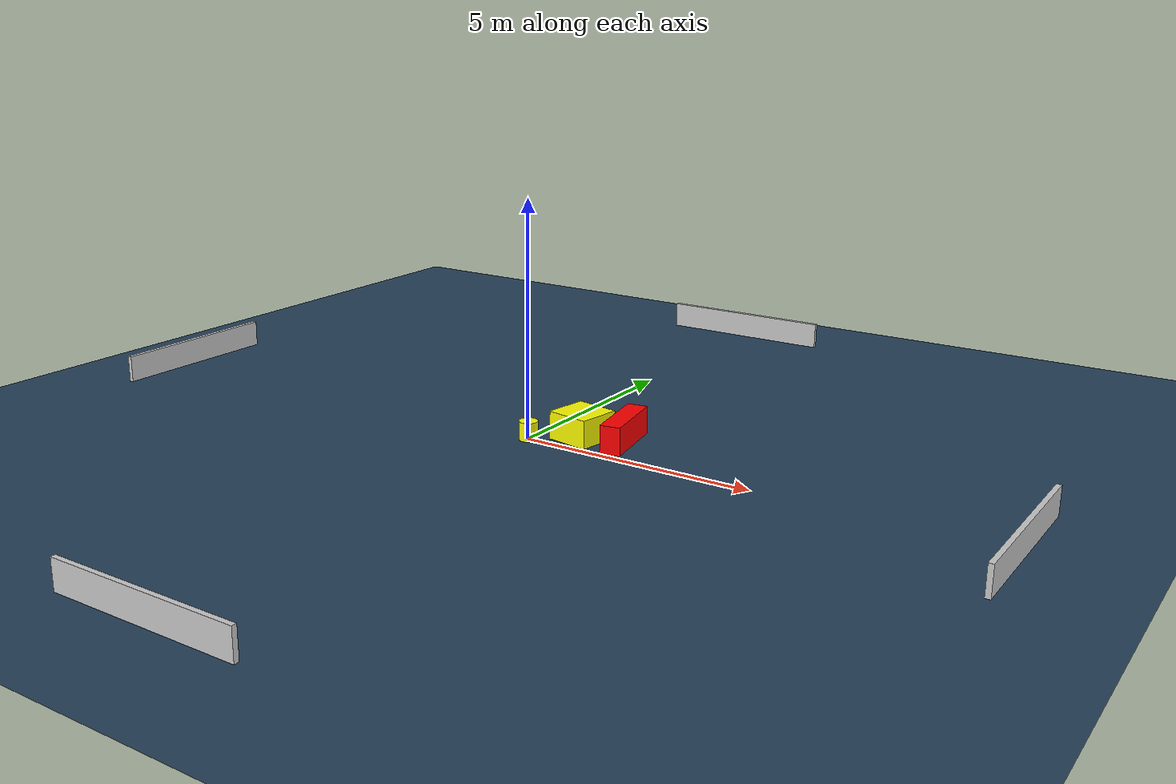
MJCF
<?xml version="1.0" ?>
<mujoco model="generated_environment">
  <option timestep="0.01" integrator="RK4" cone="elliptic"/>
  <default>
    <geom density="1"/>
  </default>
  <asset>
    <texture builtin="gradient" height="3072" name="skybox" rgb1="0.3 0.5 0.7" rgb2="0 0 0" type="skybox" width="512"/>
    <texture builtin="checker" height="300" name="groundplane" rgb1="0.2 0.3 0.4" rgb2="0.1 0.2 0.3" type="2d" width="300"/>
    <material name="groundplane" reflectance="0.2" texrepeat="5 5" texture="groundplane"/>
  </asset>
  <worldbody>
    <light dir="0 0 -1" directional="true" pos="0 0 1.5"/>
    <geom condim="3" friction="0.5 0.005 0.001" material="groundplane" name="floor" pos="0 0 0" size="0 0 0.05" type="plane"/>
    <body name="walls">
      <geom name="wall_1" condim="4" pos="-10.0 0.0 0.3" rgba="0.800000011920929 0.800000011920929 0.800000011920929 1.0" size="0.05 2.0 0.3" type="box"/>
      <geom name="wall_2" condim="4" pos="10.0 0.0 0.3" rgba="0.800000011920929 0.800000011920929 0.800000011920929 1.0" size="0.05 2.0 0.3" type="box"/>
      <geom name="wall_3" condim="4" pos="0.0 -10.0 0.3" rgba="0.800000011920929 0.800000011920929 0.800000011920929 1.0" size="2.0 0.05 0.3" type="box"/>
      <geom name="wall_4" condim="4" pos="0.0 10.0 0.3" rgba="0.800000011920929 0.800000011920929 0.800000011920929 1.0" size="2.0 0.05 0.3" type="box"/>
    </body>
    <body name="robot">
      <joint name="joint_x" type="slide" pos="0 0 0" axis="1 0 0"/>
      <joint name="joint_y" type="slide" pos="0 0 0" axis="0 1 0"/>
      <geom name="robot" type="cylinder" pos="0.0 0.0 0.2" size="0.2 0.2 0.0" mass="5.0" friction="1.0 0.005 0.0001" condim="4" rgba="1.0 1.0 0.0 1.0"/>
    </body>
    <body name="obstacle_1_movable">
      <geom name="obstacle_1_movable" condim="4" pos="0.8892999557876783 0.6609188080836796 0.3" euler="0 0 350.533526486458" friction="0.0 0.005 0.001" rgba="1.0 1.0 0.0 1.0" size="0.47048676265144806 0.4731064571918519 0.3" type="box" mass="0.1"/>
      <joint type="free"/>
    </body>
    <body name="obstacle_2_static">
      <geom name="obstacle_2_static" condim="4" pos="1.7476465735458895 0.8971239392573006 0.3" euler="0 0 189.58647077005352" friction="0.0 0.005 0.001" rgba="1.0 0.0 0.0 1.0" size="0.2155154498542936 0.7735874898142794 0.3" type="box"/>
    </body>
  </worldbody>
  <actuator>
    <motor name="actuator_x" joint="joint_x" gear="1" ctrlrange="-1 1"/>
    <motor name="actuator_y" joint="joint_y" gear="1" ctrlrange="-1 1"/>
  </actuator>
</mujoco>
